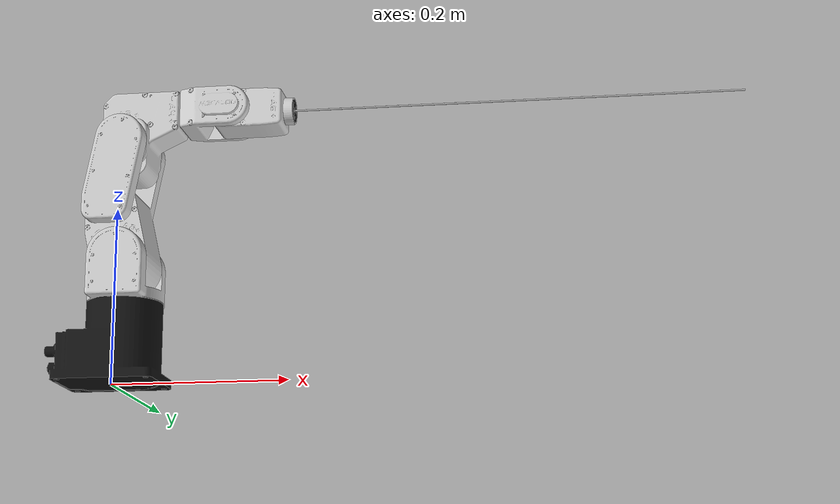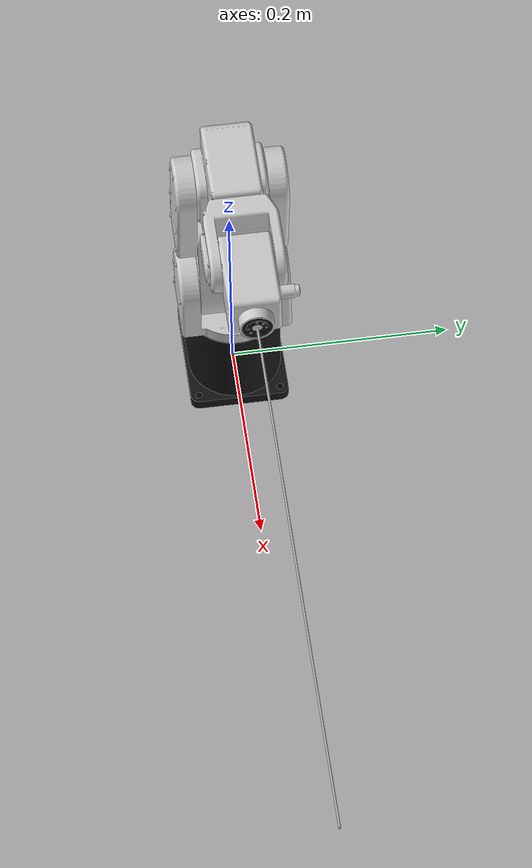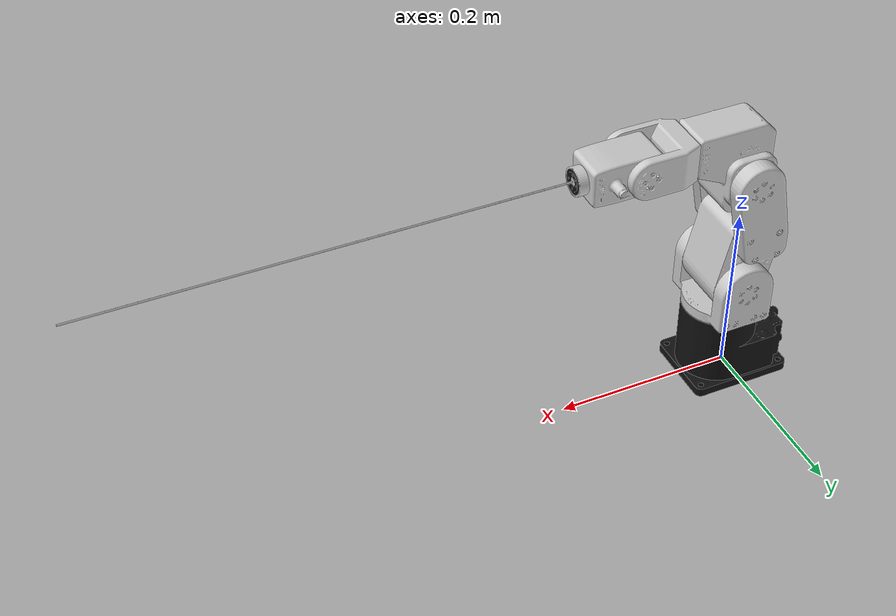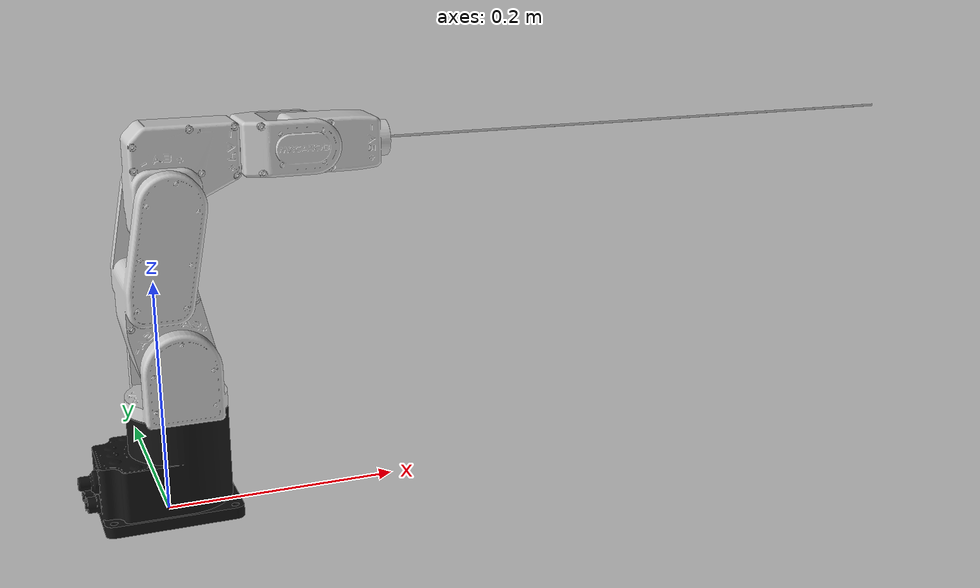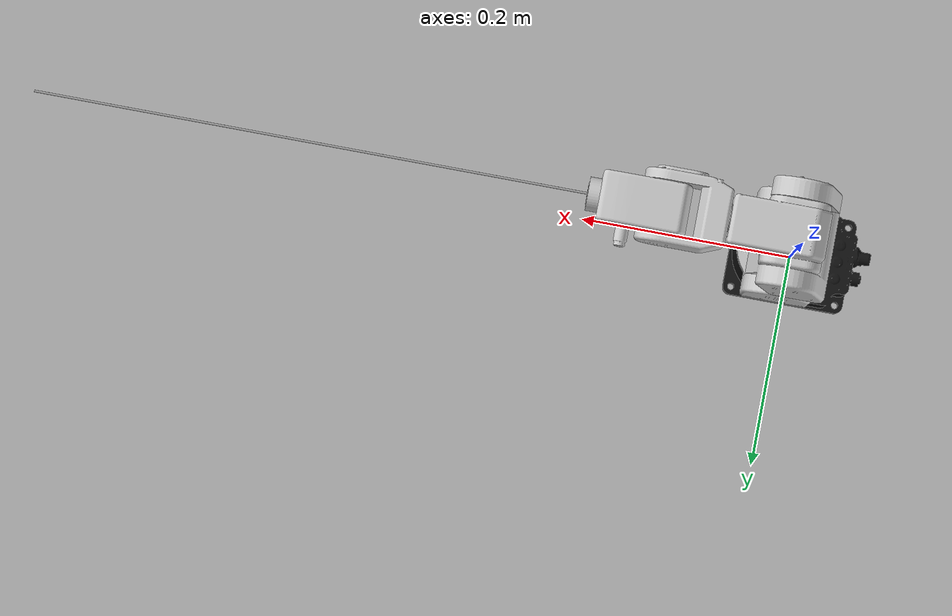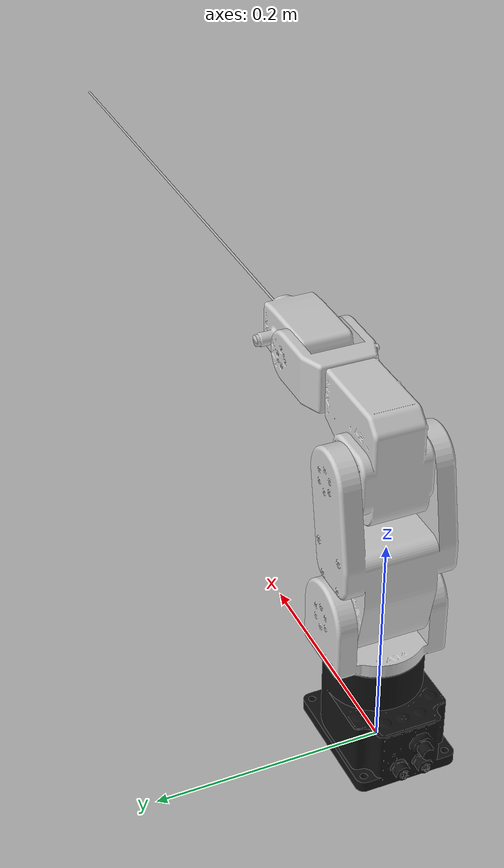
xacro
<robot name="meca_500_r3" xmlns:xacro="http://ros.org/wiki/xacro">
  <!-- Base link is the center of the robot's bottom plate -->
  <link name="meca_base_link">
    <visual>
      <origin xyz="0 0 0" rpy="0 0 0" />
      <geometry>
        <mesh filename="package://mecademic_description/meshes/meca_500_r3_base.dae" />
      </geometry>
    </visual>
    <collision>
      <origin xyz="0 0 0" rpy="0 0 0" />
      <geometry>
        <mesh filename="package://mecademic_description/meshes/meca_500_r3_base_collision.stl" />
      </geometry>
    </collision>
  </link>

  <!-- Joint 1 -->
  <link name="meca_axis_1_link">
    <visual>
      <origin xyz="0 0 0" rpy="0 0 0" />
      <geometry>
        <mesh filename="package://mecademic_description/meshes/meca_500_r3_j1.dae" />
      </geometry>
    </visual>
    <collision>
      <origin xyz="0 0 0" rpy="0 0 0" />
      <geometry>
        <mesh filename="package://mecademic_description/meshes/meca_500_r3_j1_collision.stl" />
      </geometry>
    </collision>
  </link>

  <joint name="meca_axis_1_joint" type="revolute">
    <origin xyz="0.012498 0 0.091" rpy="0 0 0" />
    <parent link="meca_base_link" />
    <child link="meca_axis_1_link" />
    <axis xyz="0 0 1" />
    <limit effort="10.0" velocity="2.61799" lower="-3.05433" upper="3.05433" />
  </joint>

  <!-- Joint 2 -->
  <link name="meca_axis_2_link">
    <visual>
      <origin xyz="0 0 0" rpy="0 0 0" />
      <geometry>
        <mesh filename="package://mecademic_description/meshes/meca_500_r3_j2.dae" />
      </geometry>
    </visual>
    <collision>
      <origin xyz="0 0 0" rpy="0 0 0" />
      <geometry>
        <mesh filename="package://mecademic_description/meshes/meca_500_r3_j2_collision.stl" />
      </geometry>
    </collision>
  </link>

  <joint name="meca_axis_2_joint" type="revolute">
    <origin xyz="0 0 0.044" rpy="0 0 0" />
    <parent link="meca_axis_1_link" />
    <child link="meca_axis_2_link" />
    <axis xyz="0 1 0" />
    <limit effort="10.0" velocity="2.61799" lower="-1.22173048" upper="1.5708" />
  </joint>

  <!-- Joint 3 -->
  <link name="meca_axis_3_link">
    <visual>
      <origin xyz="0 0 0" rpy="0 0 0" />
      <geometry>
        <mesh filename="package://mecademic_description/meshes/meca_500_r3_j3.dae" />
      </geometry>
    </visual>
    <collision>
      <origin xyz="0 0 0" rpy="0 0 0" />
      <geometry>
        <mesh filename="package://mecademic_description/meshes/meca_500_r3_j3_collision.stl" />
      </geometry>
    </collision>
  </link>

  <joint name="meca_axis_3_joint" type="revolute">
    <origin xyz="0 0 0.135" rpy="0 0 0" />
    <parent link="meca_axis_2_link" />
    <child link="meca_axis_3_link" />
    <axis xyz="0 1 0" />
    <limit effort="10.0" velocity="3.14159" lower="-2.35619" upper="1.22173048" />
  </joint>

  <!-- Joint 4 -->
  <link name="meca_axis_4_link">
    <visual>
      <origin xyz="0 0 0" rpy="0 0 0" />
      <geometry>
        <mesh filename="package://mecademic_description/meshes/meca_500_r3_j4.dae" />
      </geometry>
    </visual>
    <collision>
      <origin xyz="0 0 0" rpy="0 0 0" />
      <geometry>
        <mesh filename="package://mecademic_description/meshes/meca_500_r3_j4_collision.stl" />
      </geometry>
    </collision>
  </link>

  <joint name="meca_axis_4_joint" type="revolute">
    <origin xyz="0 0 0.038" rpy="0 0 0" />
    <parent link="meca_axis_3_link" />
    <child link="meca_axis_4_link" />
    <axis xyz="1 0 0" />
    <limit effort="10.0" velocity="5.23599" lower="-2.96706" upper="2.96706" />
  </joint>

  <!-- Joint 5 -->
  <link name="meca_axis_5_link">
    <visual>
      <origin xyz="0 0 0" rpy="0 0 0" />
      <geometry>
        <mesh filename="package://mecademic_description/meshes/meca_500_r3_j5.dae" />
      </geometry>
    </visual>
    <collision>
      <origin xyz="0 0 0" rpy="0 0 0" />
      <geometry>
        <mesh filename="package://mecademic_description/meshes/meca_500_r3_j5_collision.stl" />
      </geometry>
    </collision>
  </link>

  <joint name="meca_axis_5_joint" type="revolute">
    <origin xyz="0.12 0 0" rpy="0 0 0" />
    <parent link="meca_axis_4_link" />
    <child link="meca_axis_5_link" />
    <axis xyz="0 1 0" />
    <limit effort="10.0" velocity="5.23599" lower="-2.00713" upper="2.00713" />
  </joint>

  <!-- Joint 6 -->
  <link name="meca_axis_6_link">
    <visual>
      <origin xyz="0 0 0" rpy="0 0 0" />
      <geometry>
        <mesh filename="package://mecademic_description/meshes/meca_500_r3_j6.dae" />
      </geometry>
    </visual>
    <collision>
      <origin xyz="0 0 0" rpy="0 0 0" />
      <geometry>
        <mesh filename="package://mecademic_description/meshes/meca_500_r3_j6_collision.stl" />
      </geometry>
    </collision>
  </link>

  <joint name="meca_axis_6_joint" type="revolute">
    <origin xyz="0.07 0 0" rpy="0 0 0" />
    <parent link="meca_axis_5_link" />
    <child link="meca_axis_6_link" />
    <axis xyz="1 0 0" />
    <limit effort="10.0" velocity="8.72665" lower="-3.14159" upper="3.14159" />
  </joint>

<!-- Joint LASER -->
  <link name="meca_laser_link">
    <visual>
      <origin xyz="0 0 ${0.5/2}" rpy="0 0 0" />
      <geometry>
           <cylinder length="0.5" radius="0.001"/>
      </geometry>
    </visual>
    <collision>
      <origin xyz="0 0 0" rpy="0 0 0" />
      <geometry>
           <cylinder length="0.5" radius="0.001"/>
      </geometry>
    </collision>
  </link>

  <joint name="meca_laser_joint" type="fixed">
    <origin xyz="0 0 0" rpy="0 ${pi/2} 0" />
    <parent link="meca_axis_6_link" />
    <child link="meca_laser_link" />
  </joint>

</robot>
